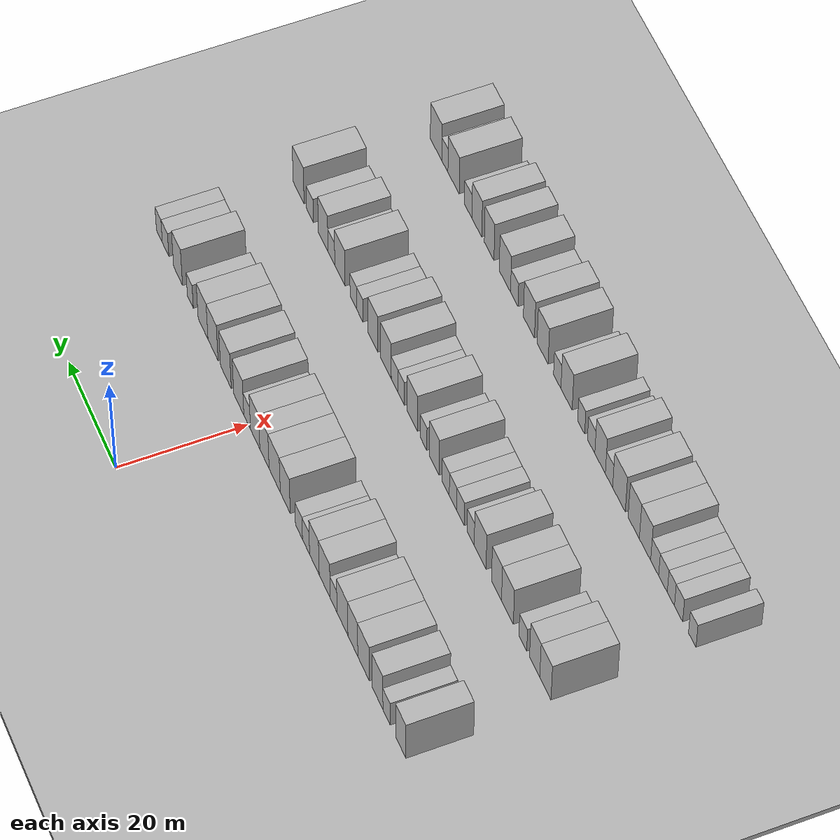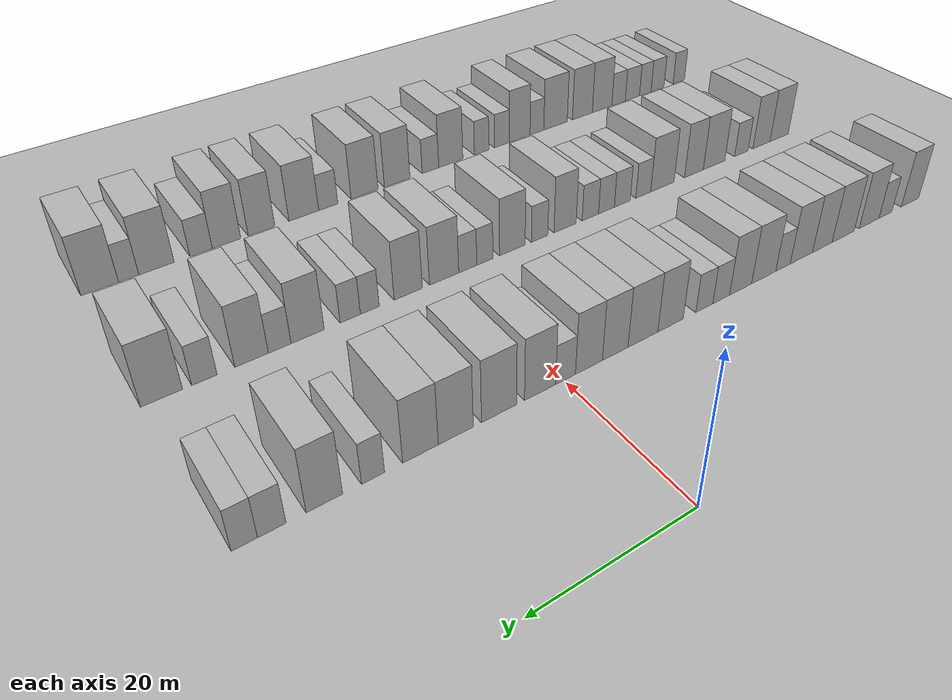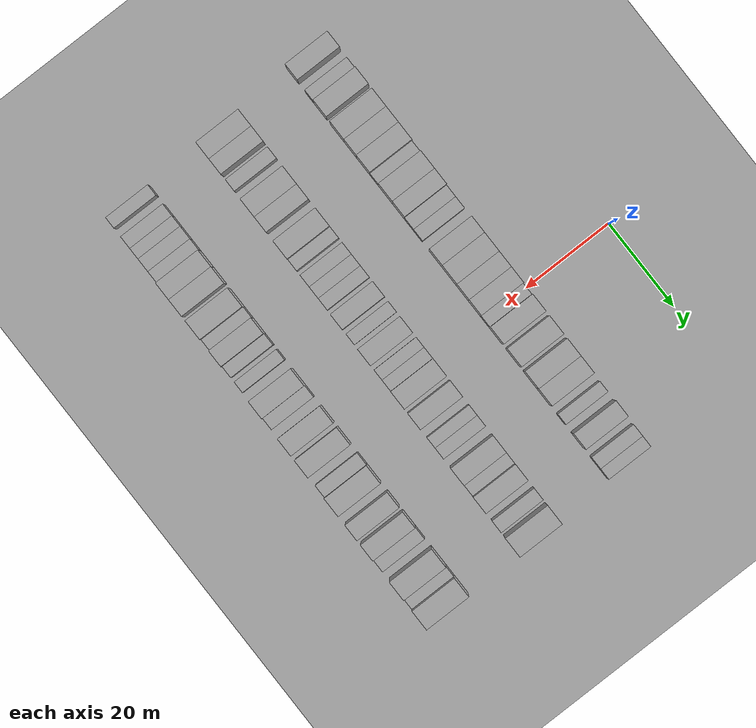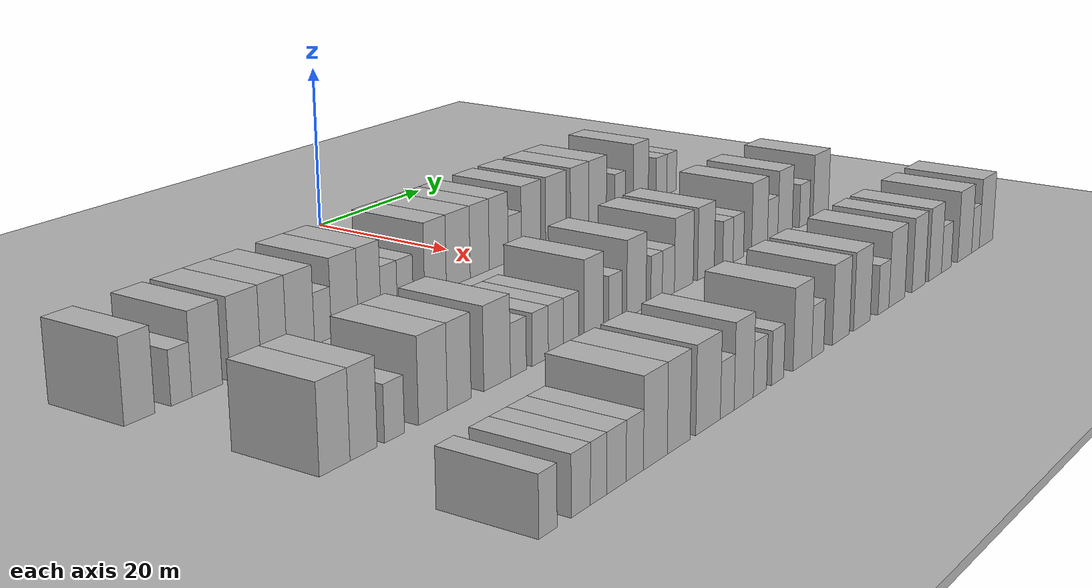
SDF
<sdf version="1.6">
 <world name="default">
  <include><name>ground_plane_1</name><uri>model://HANNAS_ground_plane</uri></include>
  <include>
   <name>ground_plane_2</name>
   <uri>model://HANNAS_ground_plane</uri>
   <pose>100 0 0  0 0 0</pose>
  </include>
  <model name="building_49">
   <static>1</static>
   <pose>25.0000 -58.6655 0 0.000000 0.000000 0.000000</pose>
   <link name="link">
    <pose>0 0 4.50 0 0 0</pose>
    <collision name="collision"><geometry><box><size>10.0000 3.7529 9.0000</size></box></geometry></collision>
    <visual name="visual">
     <cast_shadows>0</cast_shadows>
     <geometry><box><size>10.0000 3.7529 9.0000</size></box></geometry>
     <material>
      <script>
       <uri>model://HANNAS_wall/materials/scripts</uri>
       <uri>model://HANNAS_wall/materials/textures</uri>
       <name>vrc/HANNAS_wall</name>
      </script>
     </material>
    </visual>
   </link>
  </model>
  <model name="building_50">
   <static>1</static>
   <pose>25.0000 -53.4581 0 0.000000 0.000000 0.000000</pose>
   <link name="link">
    <pose>0 0 3.00 0 0 0</pose>
    <collision name="collision"><geometry><box><size>10.0000 2.6618 6.0000</size></box></geometry></collision>
    <visual name="visual">
     <cast_shadows>0</cast_shadows>
     <geometry><box><size>10.0000 2.6618 6.0000</size></box></geometry>
     <material>
      <script>
       <uri>model://HANNAS_wall/materials/scripts</uri>
       <uri>model://HANNAS_wall/materials/textures</uri>
       <name>vrc/HANNAS_wall</name>
      </script>
     </material>
    </visual>
   </link>
  </model>
  <model name="building_51">
   <static>1</static>
   <pose>25.0000 -50.1137 0 0.000000 0.000000 0.000000</pose>
   <link name="link">
    <pose>0 0 4.50 0 0 0</pose>
    <collision name="collision"><geometry><box><size>10.0000 4.0269 9.0000</size></box></geometry></collision>
    <visual name="visual">
     <cast_shadows>0</cast_shadows>
     <geometry><box><size>10.0000 4.0269 9.0000</size></box></geometry>
     <material>
      <script>
       <uri>model://HANNAS_wall/materials/scripts</uri>
       <uri>model://HANNAS_wall/materials/textures</uri>
       <name>vrc/HANNAS_wall</name>
      </script>
     </material>
    </visual>
   </link>
  </model>
  <model name="building_52">
   <static>1</static>
   <pose>25.0000 -44.9490 0 0.000000 0.000000 0.000000</pose>
   <link name="link">
    <pose>0 0 4.50 0 0 0</pose>
    <collision name="collision"><geometry><box><size>10.0000 4.3026 9.0000</size></box></geometry></collision>
    <visual name="visual">
     <cast_shadows>0</cast_shadows>
     <geometry><box><size>10.0000 4.3026 9.0000</size></box></geometry>
     <material>
      <script>
       <uri>model://HANNAS_wall/materials/scripts</uri>
       <uri>model://HANNAS_wall/materials/textures</uri>
       <name>vrc/HANNAS_wall</name>
      </script>
     </material>
    </visual>
   </link>
  </model>
  <model name="building_53">
   <static>1</static>
   <pose>25.0000 -40.9381 0 0.000000 0.000000 0.000000</pose>
   <link name="link">
    <pose>0 0 4.50 0 0 0</pose>
    <collision name="collision"><geometry><box><size>10.0000 3.7192 9.0000</size></box></geometry></collision>
    <visual name="visual">
     <cast_shadows>0</cast_shadows>
     <geometry><box><size>10.0000 3.7192 9.0000</size></box></geometry>
     <material>
      <script>
       <uri>model://HANNAS_wall/materials/scripts</uri>
       <uri>model://HANNAS_wall/materials/textures</uri>
       <name>vrc/HANNAS_wall</name>
      </script>
     </material>
    </visual>
   </link>
  </model>
  <model name="building_54">
   <static>1</static>
   <pose>25.0000 -37.0267 0 0.000000 0.000000 0.000000</pose>
   <link name="link">
    <pose>0 0 4.50 0 0 0</pose>
    <collision name="collision"><geometry><box><size>10.0000 4.1036 9.0000</size></box></geometry></collision>
    <visual name="visual">
     <cast_shadows>0</cast_shadows>
     <geometry><box><size>10.0000 4.1036 9.0000</size></box></geometry>
     <material>
      <script>
       <uri>model://HANNAS_wall/materials/scripts</uri>
       <uri>model://HANNAS_wall/materials/textures</uri>
       <name>vrc/HANNAS_wall</name>
      </script>
     </material>
    </visual>
   </link>
  </model>
  <model name="building_55">
   <static>1</static>
   <pose>25.0000 -33.6803 0 0.000000 0.000000 0.000000</pose>
   <link name="link">
    <pose>0 0 3.00 0 0 0</pose>
    <collision name="collision"><geometry><box><size>10.0000 2.5893 6.0000</size></box></geometry></collision>
    <visual name="visual">
     <cast_shadows>0</cast_shadows>
     <geometry><box><size>10.0000 2.5893 6.0000</size></box></geometry>
     <material>
      <script>
       <uri>model://HANNAS_wall/materials/scripts</uri>
       <uri>model://HANNAS_wall/materials/textures</uri>
       <name>vrc/HANNAS_wall</name>
      </script>
     </material>
    </visual>
   </link>
  </model>
  <model name="building_56">
   <static>1</static>
   <pose>25.0000 -30.2740 0 0.000000 0.000000 0.000000</pose>
   <link name="link">
    <pose>0 0 4.50 0 0 0</pose>
    <collision name="collision"><geometry><box><size>10.0000 4.2232 9.0000</size></box></geometry></collision>
    <visual name="visual">
     <cast_shadows>0</cast_shadows>
     <geometry><box><size>10.0000 4.2232 9.0000</size></box></geometry>
     <material>
      <script>
       <uri>model://HANNAS_wall/materials/scripts</uri>
       <uri>model://HANNAS_wall/materials/textures</uri>
       <name>vrc/HANNAS_wall</name>
      </script>
     </material>
    </visual>
   </link>
  </model>
  <model name="building_57">
   <static>1</static>
   <pose>25.0000 -26.3121 0 0.000000 0.000000 0.000000</pose>
   <link name="link">
    <pose>0 0 4.50 0 0 0</pose>
    <collision name="collision"><geometry><box><size>10.0000 3.7006 9.0000</size></box></geometry></collision>
    <visual name="visual">
     <cast_shadows>0</cast_shadows>
     <geometry><box><size>10.0000 3.7006 9.0000</size></box></geometry>
     <material>
      <script>
       <uri>model://HANNAS_wall/materials/scripts</uri>
       <uri>model://HANNAS_wall/materials/textures</uri>
       <name>vrc/HANNAS_wall</name>
      </script>
     </material>
    </visual>
   </link>
  </model>
  <model name="building_58">
   <static>1</static>
   <pose>25.0000 -23.0801 0 0.000000 0.000000 0.000000</pose>
   <link name="link">
    <pose>0 0 3.00 0 0 0</pose>
    <collision name="collision"><geometry><box><size>10.0000 2.7633 6.0000</size></box></geometry></collision>
    <visual name="visual">
     <cast_shadows>0</cast_shadows>
     <geometry><box><size>10.0000 2.7633 6.0000</size></box></geometry>
     <material>
      <script>
       <uri>model://HANNAS_wall/materials/scripts</uri>
       <uri>model://HANNAS_wall/materials/textures</uri>
       <name>vrc/HANNAS_wall</name>
      </script>
     </material>
    </visual>
   </link>
  </model>
  <model name="building_59">
   <static>1</static>
   <pose>25.0000 -20.3308 0 0.000000 0.000000 0.000000</pose>
   <link name="link">
    <pose>0 0 3.00 0 0 0</pose>
    <collision name="collision"><geometry><box><size>10.0000 2.7353 6.0000</size></box></geometry></collision>
    <visual name="visual">
     <cast_shadows>0</cast_shadows>
     <geometry><box><size>10.0000 2.7353 6.0000</size></box></geometry>
     <material>
      <script>
       <uri>model://HANNAS_wall/materials/scripts</uri>
       <uri>model://HANNAS_wall/materials/textures</uri>
       <name>vrc/HANNAS_wall</name>
      </script>
     </material>
    </visual>
   </link>
  </model>
  <model name="building_60">
   <static>1</static>
   <pose>25.0000 -15.0139 0 0.000000 0.000000 0.000000</pose>
   <link name="link">
    <pose>0 0 4.50 0 0 0</pose>
    <collision name="collision"><geometry><box><size>10.0000 3.8985 9.0000</size></box></geometry></collision>
    <visual name="visual">
     <cast_shadows>0</cast_shadows>
     <geometry><box><size>10.0000 3.8985 9.0000</size></box></geometry>
     <material>
      <script>
       <uri>model://HANNAS_wall/materials/scripts</uri>
       <uri>model://HANNAS_wall/materials/textures</uri>
       <name>vrc/HANNAS_wall</name>
      </script>
     </material>
    </visual>
   </link>
  </model>
  <model name="building_61">
   <static>1</static>
   <pose>25.0000 -10.8481 0 0.000000 0.000000 0.000000</pose>
   <link name="link">
    <pose>0 0 4.50 0 0 0</pose>
    <collision name="collision"><geometry><box><size>10.0000 4.4330 9.0000</size></box></geometry></collision>
    <visual name="visual">
     <cast_shadows>0</cast_shadows>
     <geometry><box><size>10.0000 4.4330 9.0000</size></box></geometry>
     <material>
      <script>
       <uri>model://HANNAS_wall/materials/scripts</uri>
       <uri>model://HANNAS_wall/materials/textures</uri>
       <name>vrc/HANNAS_wall</name>
      </script>
     </material>
    </visual>
   </link>
  </model>
  <model name="building_62">
   <static>1</static>
   <pose>25.0000 -6.7926 0 0.000000 0.000000 0.000000</pose>
   <link name="link">
    <pose>0 0 4.50 0 0 0</pose>
    <collision name="collision"><geometry><box><size>10.0000 3.6780 9.0000</size></box></geometry></collision>
    <visual name="visual">
     <cast_shadows>0</cast_shadows>
     <geometry><box><size>10.0000 3.6780 9.0000</size></box></geometry>
     <material>
      <script>
       <uri>model://HANNAS_wall/materials/scripts</uri>
       <uri>model://HANNAS_wall/materials/textures</uri>
       <name>vrc/HANNAS_wall</name>
      </script>
     </material>
    </visual>
   </link>
  </model>
  <model name="building_63">
   <static>1</static>
   <pose>25.0000 -3.0850 0 0.000000 0.000000 0.000000</pose>
   <link name="link">
    <pose>0 0 4.50 0 0 0</pose>
    <collision name="collision"><geometry><box><size>10.0000 3.7371 9.0000</size></box></geometry></collision>
    <visual name="visual">
     <cast_shadows>0</cast_shadows>
     <geometry><box><size>10.0000 3.7371 9.0000</size></box></geometry>
     <material>
      <script>
       <uri>model://HANNAS_wall/materials/scripts</uri>
       <uri>model://HANNAS_wall/materials/textures</uri>
       <name>vrc/HANNAS_wall</name>
      </script>
     </material>
    </visual>
   </link>
  </model>
  <model name="building_64">
   <static>1</static>
   <pose>25.0000 0.1219 0 0.000000 0.000000 0.000000</pose>
   <link name="link">
    <pose>0 0 3.00 0 0 0</pose>
    <collision name="collision"><geometry><box><size>10.0000 2.6768 6.0000</size></box></geometry></collision>
    <visual name="visual">
     <cast_shadows>0</cast_shadows>
     <geometry><box><size>10.0000 2.6768 6.0000</size></box></geometry>
     <material>
      <script>
       <uri>model://HANNAS_wall/materials/scripts</uri>
       <uri>model://HANNAS_wall/materials/textures</uri>
       <name>vrc/HANNAS_wall</name>
      </script>
     </material>
    </visual>
   </link>
  </model>
  <model name="building_65">
   <static>1</static>
   <pose>25.0000 3.4981 0 0.000000 0.000000 0.000000</pose>
   <link name="link">
    <pose>0 0 4.50 0 0 0</pose>
    <collision name="collision"><geometry><box><size>10.0000 4.0755 9.0000</size></box></geometry></collision>
    <visual name="visual">
     <cast_shadows>0</cast_shadows>
     <geometry><box><size>10.0000 4.0755 9.0000</size></box></geometry>
     <material>
      <script>
       <uri>model://HANNAS_wall/materials/scripts</uri>
       <uri>model://HANNAS_wall/materials/textures</uri>
       <name>vrc/HANNAS_wall</name>
      </script>
     </material>
    </visual>
   </link>
  </model>
  <model name="building_66">
   <static>1</static>
   <pose>25.0000 8.7267 0 0.000000 0.000000 0.000000</pose>
   <link name="link">
    <pose>0 0 4.50 0 0 0</pose>
    <collision name="collision"><geometry><box><size>10.0000 4.3817 9.0000</size></box></geometry></collision>
    <visual name="visual">
     <cast_shadows>0</cast_shadows>
     <geometry><box><size>10.0000 4.3817 9.0000</size></box></geometry>
     <material>
      <script>
       <uri>model://HANNAS_wall/materials/scripts</uri>
       <uri>model://HANNAS_wall/materials/textures</uri>
       <name>vrc/HANNAS_wall</name>
      </script>
     </material>
    </visual>
   </link>
  </model>
  <model name="building_67">
   <static>1</static>
   <pose>25.0000 13.9916 0 0.000000 0.000000 0.000000</pose>
   <link name="link">
    <pose>0 0 4.50 0 0 0</pose>
    <collision name="collision"><geometry><box><size>10.0000 4.1483 9.0000</size></box></geometry></collision>
    <visual name="visual">
     <cast_shadows>0</cast_shadows>
     <geometry><box><size>10.0000 4.1483 9.0000</size></box></geometry>
     <material>
      <script>
       <uri>model://HANNAS_wall/materials/scripts</uri>
       <uri>model://HANNAS_wall/materials/textures</uri>
       <name>vrc/HANNAS_wall</name>
      </script>
     </material>
    </visual>
   </link>
  </model>
  <model name="building_68">
   <static>1</static>
   <pose>25.0000 18.0978 0 0.000000 0.000000 0.000000</pose>
   <link name="link">
    <pose>0 0 4.50 0 0 0</pose>
    <collision name="collision"><geometry><box><size>10.0000 4.0641 9.0000</size></box></geometry></collision>
    <visual name="visual">
     <cast_shadows>0</cast_shadows>
     <geometry><box><size>10.0000 4.0641 9.0000</size></box></geometry>
     <material>
      <script>
       <uri>model://HANNAS_wall/materials/scripts</uri>
       <uri>model://HANNAS_wall/materials/textures</uri>
       <name>vrc/HANNAS_wall</name>
      </script>
     </material>
    </visual>
   </link>
  </model>
  <model name="building_69">
   <static>1</static>
   <pose>25.0000 23.3764 0 0.000000 0.000000 0.000000</pose>
   <link name="link">
    <pose>0 0 3.00 0 0 0</pose>
    <collision name="collision"><geometry><box><size>10.0000 2.4930 6.0000</size></box></geometry></collision>
    <visual name="visual">
     <cast_shadows>0</cast_shadows>
     <geometry><box><size>10.0000 2.4930 6.0000</size></box></geometry>
     <material>
      <script>
       <uri>model://HANNAS_wall/materials/scripts</uri>
       <uri>model://HANNAS_wall/materials/textures</uri>
       <name>vrc/HANNAS_wall</name>
      </script>
     </material>
    </visual>
   </link>
  </model>
  <model name="building_70">
   <static>1</static>
   <pose>25.0000 28.4980 0 0.000000 0.000000 0.000000</pose>
   <link name="link">
    <pose>0 0 4.50 0 0 0</pose>
    <collision name="collision"><geometry><box><size>10.0000 3.7503 9.0000</size></box></geometry></collision>
    <visual name="visual">
     <cast_shadows>0</cast_shadows>
     <geometry><box><size>10.0000 3.7503 9.0000</size></box></geometry>
     <material>
      <script>
       <uri>model://HANNAS_wall/materials/scripts</uri>
       <uri>model://HANNAS_wall/materials/textures</uri>
       <name>vrc/HANNAS_wall</name>
      </script>
     </material>
    </visual>
   </link>
  </model>
  <model name="building_71">
   <static>1</static>
   <pose>25.0000 33.7578 0 0.000000 0.000000 0.000000</pose>
   <link name="link">
    <pose>0 0 3.00 0 0 0</pose>
    <collision name="collision"><geometry><box><size>10.0000 2.7693 6.0000</size></box></geometry></collision>
    <visual name="visual">
     <cast_shadows>0</cast_shadows>
     <geometry><box><size>10.0000 2.7693 6.0000</size></box></geometry>
     <material>
      <script>
       <uri>model://HANNAS_wall/materials/scripts</uri>
       <uri>model://HANNAS_wall/materials/textures</uri>
       <name>vrc/HANNAS_wall</name>
      </script>
     </material>
    </visual>
   </link>
  </model>
  <model name="building_72">
   <static>1</static>
   <pose>25.0000 36.3964 0 0.000000 0.000000 0.000000</pose>
   <link name="link">
    <pose>0 0 3.00 0 0 0</pose>
    <collision name="collision"><geometry><box><size>10.0000 2.5077 6.0000</size></box></geometry></collision>
    <visual name="visual">
     <cast_shadows>0</cast_shadows>
     <geometry><box><size>10.0000 2.5077 6.0000</size></box></geometry>
     <material>
      <script>
       <uri>model://HANNAS_wall/materials/scripts</uri>
       <uri>model://HANNAS_wall/materials/textures</uri>
       <name>vrc/HANNAS_wall</name>
      </script>
     </material>
    </visual>
   </link>
  </model>
  <model name="building_171">
   <static>1</static>
   <pose>47.0000 -57.3354 0 0.000000 0.000000 0.000000</pose>
   <link name="link">
    <pose>0 0 4.50 0 0 0</pose>
    <collision name="collision"><geometry><box><size>10.0000 3.9554 9.0000</size></box></geometry></collision>
    <visual name="visual">
     <cast_shadows>0</cast_shadows>
     <geometry><box><size>10.0000 3.9554 9.0000</size></box></geometry>
     <material>
      <script>
       <uri>model://HANNAS_wall/materials/scripts</uri>
       <uri>model://HANNAS_wall/materials/textures</uri>
       <name>vrc/HANNAS_wall</name>
      </script>
     </material>
    </visual>
   </link>
  </model>
  <model name="building_172">
   <static>1</static>
   <pose>47.0000 -53.5448 0 0.000000 0.000000 0.000000</pose>
   <link name="link">
    <pose>0 0 4.50 0 0 0</pose>
    <collision name="collision"><geometry><box><size>10.0000 3.6259 9.0000</size></box></geometry></collision>
    <visual name="visual">
     <cast_shadows>0</cast_shadows>
     <geometry><box><size>10.0000 3.6259 9.0000</size></box></geometry>
     <material>
      <script>
       <uri>model://HANNAS_wall/materials/scripts</uri>
       <uri>model://HANNAS_wall/materials/textures</uri>
       <name>vrc/HANNAS_wall</name>
      </script>
     </material>
    </visual>
   </link>
  </model>
  <model name="building_173">
   <static>1</static>
   <pose>47.0000 -49.3407 0 0.000000 0.000000 0.000000</pose>
   <link name="link">
    <pose>0 0 3.00 0 0 0</pose>
    <collision name="collision"><geometry><box><size>10.0000 2.7821 6.0000</size></box></geometry></collision>
    <visual name="visual">
     <cast_shadows>0</cast_shadows>
     <geometry><box><size>10.0000 2.7821 6.0000</size></box></geometry>
     <material>
      <script>
       <uri>model://HANNAS_wall/materials/scripts</uri>
       <uri>model://HANNAS_wall/materials/textures</uri>
       <name>vrc/HANNAS_wall</name>
      </script>
     </material>
    </visual>
   </link>
  </model>
  <model name="building_174">
   <static>1</static>
   <pose>47.0000 -43.8166 0 0.000000 0.000000 0.000000</pose>
   <link name="link">
    <pose>0 0 4.50 0 0 0</pose>
    <collision name="collision"><geometry><box><size>10.0000 4.2661 9.0000</size></box></geometry></collision>
    <visual name="visual">
     <cast_shadows>0</cast_shadows>
     <geometry><box><size>10.0000 4.2661 9.0000</size></box></geometry>
     <material>
      <script>
       <uri>model://HANNAS_wall/materials/scripts</uri>
       <uri>model://HANNAS_wall/materials/textures</uri>
       <name>vrc/HANNAS_wall</name>
      </script>
     </material>
    </visual>
   </link>
  </model>
  <model name="building_175">
   <static>1</static>
   <pose>47.0000 -39.8684 0 0.000000 0.000000 0.000000</pose>
   <link name="link">
    <pose>0 0 4.50 0 0 0</pose>
    <collision name="collision"><geometry><box><size>10.0000 3.6304 9.0000</size></box></geometry></collision>
    <visual name="visual">
     <cast_shadows>0</cast_shadows>
     <geometry><box><size>10.0000 3.6304 9.0000</size></box></geometry>
     <material>
      <script>
       <uri>model://HANNAS_wall/materials/scripts</uri>
       <uri>model://HANNAS_wall/materials/textures</uri>
       <name>vrc/HANNAS_wall</name>
      </script>
     </material>
    </visual>
   </link>
  </model>
  <model name="building_176">
   <static>1</static>
   <pose>47.0000 -33.8919 0 0.000000 0.000000 0.000000</pose>
   <link name="link">
    <pose>0 0 4.50 0 0 0</pose>
    <collision name="collision"><geometry><box><size>10.0000 4.3226 9.0000</size></box></geometry></collision>
    <visual name="visual">
     <cast_shadows>0</cast_shadows>
     <geometry><box><size>10.0000 4.3226 9.0000</size></box></geometry>
     <material>
      <script>
       <uri>model://HANNAS_wall/materials/scripts</uri>
       <uri>model://HANNAS_wall/materials/textures</uri>
       <name>vrc/HANNAS_wall</name>
      </script>
     </material>
    </visual>
   </link>
  </model>
  <model name="building_177">
   <static>1</static>
   <pose>47.0000 -30.3866 0 0.000000 0.000000 0.000000</pose>
   <link name="link">
    <pose>0 0 3.00 0 0 0</pose>
    <collision name="collision"><geometry><box><size>10.0000 2.6880 6.0000</size></box></geometry></collision>
    <visual name="visual">
     <cast_shadows>0</cast_shadows>
     <geometry><box><size>10.0000 2.6880 6.0000</size></box></geometry>
     <material>
      <script>
       <uri>model://HANNAS_wall/materials/scripts</uri>
       <uri>model://HANNAS_wall/materials/textures</uri>
       <name>vrc/HANNAS_wall</name>
      </script>
     </material>
    </visual>
   </link>
  </model>
  <model name="building_178">
   <static>1</static>
   <pose>47.0000 -26.6368 0 0.000000 0.000000 0.000000</pose>
   <link name="link">
    <pose>0 0 3.00 0 0 0</pose>
    <collision name="collision"><geometry><box><size>10.0000 2.8116 6.0000</size></box></geometry></collision>
    <visual name="visual">
     <cast_shadows>0</cast_shadows>
     <geometry><box><size>10.0000 2.8116 6.0000</size></box></geometry>
     <material>
      <script>
       <uri>model://HANNAS_wall/materials/scripts</uri>
       <uri>model://HANNAS_wall/materials/textures</uri>
       <name>vrc/HANNAS_wall</name>
      </script>
     </material>
    </visual>
   </link>
  </model>
  <model name="building_179">
   <static>1</static>
   <pose>47.0000 -23.8661 0 0.000000 0.000000 0.000000</pose>
   <link name="link">
    <pose>0 0 3.00 0 0 0</pose>
    <collision name="collision"><geometry><box><size>10.0000 2.7296 6.0000</size></box></geometry></collision>
    <visual name="visual">
     <cast_shadows>0</cast_shadows>
     <geometry><box><size>10.0000 2.7296 6.0000</size></box></geometry>
     <material>
      <script>
       <uri>model://HANNAS_wall/materials/scripts</uri>
       <uri>model://HANNAS_wall/materials/textures</uri>
       <name>vrc/HANNAS_wall</name>
      </script>
     </material>
    </visual>
   </link>
  </model>
  <model name="building_180">
   <static>1</static>
   <pose>47.0000 -21.1124 0 0.000000 0.000000 0.000000</pose>
   <link name="link">
    <pose>0 0 3.00 0 0 0</pose>
    <collision name="collision"><geometry><box><size>10.0000 2.7777 6.0000</size></box></geometry></collision>
    <visual name="visual">
     <cast_shadows>0</cast_shadows>
     <geometry><box><size>10.0000 2.7777 6.0000</size></box></geometry>
     <material>
      <script>
       <uri>model://HANNAS_wall/materials/scripts</uri>
       <uri>model://HANNAS_wall/materials/textures</uri>
       <name>vrc/HANNAS_wall</name>
      </script>
     </material>
    </visual>
   </link>
  </model>
  <model name="building_181">
   <static>1</static>
   <pose>47.0000 -16.8980 0 0.000000 0.000000 0.000000</pose>
   <link name="link">
    <pose>0 0 4.50 0 0 0</pose>
    <collision name="collision"><geometry><box><size>10.0000 3.6511 9.0000</size></box></geometry></collision>
    <visual name="visual">
     <cast_shadows>0</cast_shadows>
     <geometry><box><size>10.0000 3.6511 9.0000</size></box></geometry>
     <material>
      <script>
       <uri>model://HANNAS_wall/materials/scripts</uri>
       <uri>model://HANNAS_wall/materials/textures</uri>
       <name>vrc/HANNAS_wall</name>
      </script>
     </material>
    </visual>
   </link>
  </model>
  <model name="building_182">
   <static>1</static>
   <pose>47.0000 -12.7740 0 0.000000 0.000000 0.000000</pose>
   <link name="link">
    <pose>0 0 3.00 0 0 0</pose>
    <collision name="collision"><geometry><box><size>10.0000 2.5969 6.0000</size></box></geometry></collision>
    <visual name="visual">
     <cast_shadows>0</cast_shadows>
     <geometry><box><size>10.0000 2.5969 6.0000</size></box></geometry>
     <material>
      <script>
       <uri>model://HANNAS_wall/materials/scripts</uri>
       <uri>model://HANNAS_wall/materials/textures</uri>
       <name>vrc/HANNAS_wall</name>
      </script>
     </material>
    </visual>
   </link>
  </model>
  <model name="building_183">
   <static>1</static>
   <pose>47.0000 -8.5013 0 0.000000 0.000000 0.000000</pose>
   <link name="link">
    <pose>0 0 4.50 0 0 0</pose>
    <collision name="collision"><geometry><box><size>10.0000 3.9486 9.0000</size></box></geometry></collision>
    <visual name="visual">
     <cast_shadows>0</cast_shadows>
     <geometry><box><size>10.0000 3.9486 9.0000</size></box></geometry>
     <material>
      <script>
       <uri>model://HANNAS_wall/materials/scripts</uri>
       <uri>model://HANNAS_wall/materials/textures</uri>
       <name>vrc/HANNAS_wall</name>
      </script>
     </material>
    </visual>
   </link>
  </model>
  <model name="building_184">
   <static>1</static>
   <pose>47.0000 -4.3230 0 0.000000 0.000000 0.000000</pose>
   <link name="link">
    <pose>0 0 3.00 0 0 0</pose>
    <collision name="collision"><geometry><box><size>10.0000 2.4080 6.0000</size></box></geometry></collision>
    <visual name="visual">
     <cast_shadows>0</cast_shadows>
     <geometry><box><size>10.0000 2.4080 6.0000</size></box></geometry>
     <material>
      <script>
       <uri>model://HANNAS_wall/materials/scripts</uri>
       <uri>model://HANNAS_wall/materials/textures</uri>
       <name>vrc/HANNAS_wall</name>
      </script>
     </material>
    </visual>
   </link>
  </model>
  <model name="building_185">
   <static>1</static>
   <pose>47.0000 -1.8005 0 0.000000 0.000000 0.000000</pose>
   <link name="link">
    <pose>0 0 3.00 0 0 0</pose>
    <collision name="collision"><geometry><box><size>10.0000 2.6370 6.0000</size></box></geometry></collision>
    <visual name="visual">
     <cast_shadows>0</cast_shadows>
     <geometry><box><size>10.0000 2.6370 6.0000</size></box></geometry>
     <material>
      <script>
       <uri>model://HANNAS_wall/materials/scripts</uri>
       <uri>model://HANNAS_wall/materials/textures</uri>
       <name>vrc/HANNAS_wall</name>
      </script>
     </material>
    </visual>
   </link>
  </model>
  <model name="building_186">
   <static>1</static>
   <pose>47.0000 1.6050 0 0.000000 0.000000 0.000000</pose>
   <link name="link">
    <pose>0 0 4.50 0 0 0</pose>
    <collision name="collision"><geometry><box><size>10.0000 4.1739 9.0000</size></box></geometry></collision>
    <visual name="visual">
     <cast_shadows>0</cast_shadows>
     <geometry><box><size>10.0000 4.1739 9.0000</size></box></geometry>
     <material>
      <script>
       <uri>model://HANNAS_wall/materials/scripts</uri>
       <uri>model://HANNAS_wall/materials/textures</uri>
       <name>vrc/HANNAS_wall</name>
      </script>
     </material>
    </visual>
   </link>
  </model>
  <model name="building_187">
   <static>1</static>
   <pose>47.0000 6.6190 0 0.000000 0.000000 0.000000</pose>
   <link name="link">
    <pose>0 0 4.50 0 0 0</pose>
    <collision name="collision"><geometry><box><size>10.0000 3.8542 9.0000</size></box></geometry></collision>
    <visual name="visual">
     <cast_shadows>0</cast_shadows>
     <geometry><box><size>10.0000 3.8542 9.0000</size></box></geometry>
     <material>
      <script>
       <uri>model://HANNAS_wall/materials/scripts</uri>
       <uri>model://HANNAS_wall/materials/textures</uri>
       <name>vrc/HANNAS_wall</name>
      </script>
     </material>
    </visual>
   </link>
  </model>
  <model name="building_188">
   <static>1</static>
   <pose>47.0000 11.7784 0 0.000000 0.000000 0.000000</pose>
   <link name="link">
    <pose>0 0 3.00 0 0 0</pose>
    <collision name="collision"><geometry><box><size>10.0000 2.4646 6.0000</size></box></geometry></collision>
    <visual name="visual">
     <cast_shadows>0</cast_shadows>
     <geometry><box><size>10.0000 2.4646 6.0000</size></box></geometry>
     <material>
      <script>
       <uri>model://HANNAS_wall/materials/scripts</uri>
       <uri>model://HANNAS_wall/materials/textures</uri>
       <name>vrc/HANNAS_wall</name>
      </script>
     </material>
    </visual>
   </link>
  </model>
  <model name="building_189">
   <static>1</static>
   <pose>47.0000 14.3193 0 0.000000 0.000000 0.000000</pose>
   <link name="link">
    <pose>0 0 3.00 0 0 0</pose>
    <collision name="collision"><geometry><box><size>10.0000 2.6172 6.0000</size></box></geometry></collision>
    <visual name="visual">
     <cast_shadows>0</cast_shadows>
     <geometry><box><size>10.0000 2.6172 6.0000</size></box></geometry>
     <material>
      <script>
       <uri>model://HANNAS_wall/materials/scripts</uri>
       <uri>model://HANNAS_wall/materials/textures</uri>
       <name>vrc/HANNAS_wall</name>
      </script>
     </material>
    </visual>
   </link>
  </model>
  <model name="building_190">
   <static>1</static>
   <pose>47.0000 19.6649 0 0.000000 0.000000 0.000000</pose>
   <link name="link">
    <pose>0 0 4.50 0 0 0</pose>
    <collision name="collision"><geometry><box><size>10.0000 4.0740 9.0000</size></box></geometry></collision>
    <visual name="visual">
     <cast_shadows>0</cast_shadows>
     <geometry><box><size>10.0000 4.0740 9.0000</size></box></geometry>
     <material>
      <script>
       <uri>model://HANNAS_wall/materials/scripts</uri>
       <uri>model://HANNAS_wall/materials/textures</uri>
       <name>vrc/HANNAS_wall</name>
      </script>
     </material>
    </visual>
   </link>
  </model>
  <model name="building_191">
   <static>1</static>
   <pose>47.0000 23.0623 0 0.000000 0.000000 0.000000</pose>
   <link name="link">
    <pose>0 0 3.00 0 0 0</pose>
    <collision name="collision"><geometry><box><size>10.0000 2.7208 6.0000</size></box></geometry></collision>
    <visual name="visual">
     <cast_shadows>0</cast_shadows>
     <geometry><box><size>10.0000 2.7208 6.0000</size></box></geometry>
     <material>
      <script>
       <uri>model://HANNAS_wall/materials/scripts</uri>
       <uri>model://HANNAS_wall/materials/textures</uri>
       <name>vrc/HANNAS_wall</name>
      </script>
     </material>
    </visual>
   </link>
  </model>
  <model name="building_192">
   <static>1</static>
   <pose>47.0000 26.3677 0 0.000000 0.000000 0.000000</pose>
   <link name="link">
    <pose>0 0 4.50 0 0 0</pose>
    <collision name="collision"><geometry><box><size>10.0000 3.8901 9.0000</size></box></geometry></collision>
    <visual name="visual">
     <cast_shadows>0</cast_shadows>
     <geometry><box><size>10.0000 3.8901 9.0000</size></box></geometry>
     <material>
      <script>
       <uri>model://HANNAS_wall/materials/scripts</uri>
       <uri>model://HANNAS_wall/materials/textures</uri>
       <name>vrc/HANNAS_wall</name>
      </script>
     </material>
    </visual>
   </link>
  </model>
  <model name="building_193">
   <static>1</static>
   <pose>47.0000 31.7165 0 0.000000 0.000000 0.000000</pose>
   <link name="link">
    <pose>0 0 3.00 0 0 0</pose>
    <collision name="collision"><geometry><box><size>10.0000 2.8074 6.0000</size></box></geometry></collision>
    <visual name="visual">
     <cast_shadows>0</cast_shadows>
     <geometry><box><size>10.0000 2.8074 6.0000</size></box></geometry>
     <material>
      <script>
       <uri>model://HANNAS_wall/materials/scripts</uri>
       <uri>model://HANNAS_wall/materials/textures</uri>
       <name>vrc/HANNAS_wall</name>
      </script>
     </material>
    </visual>
   </link>
  </model>
  <model name="building_194">
   <static>1</static>
   <pose>47.0000 36.3545 0 0.000000 0.000000 0.000000</pose>
   <link name="link">
    <pose>0 0 4.50 0 0 0</pose>
    <collision name="collision"><geometry><box><size>10.0000 4.4687 9.0000</size></box></geometry></collision>
    <visual name="visual">
     <cast_shadows>0</cast_shadows>
     <geometry><box><size>10.0000 4.4687 9.0000</size></box></geometry>
     <material>
      <script>
       <uri>model://HANNAS_wall/materials/scripts</uri>
       <uri>model://HANNAS_wall/materials/textures</uri>
       <name>vrc/HANNAS_wall</name>
      </script>
     </material>
    </visual>
   </link>
  </model>
  <model name="building_285">
   <static>1</static>
   <pose>69.0000 -57.6317 0 0.000000 0.000000 0.000000</pose>
   <link name="link">
    <pose>0 0 3.00 0 0 0</pose>
    <collision name="collision"><geometry><box><size>10.0000 2.5446 6.0000</size></box></geometry></collision>
    <visual name="visual">
     <cast_shadows>0</cast_shadows>
     <geometry><box><size>10.0000 2.5446 6.0000</size></box></geometry>
     <material>
      <script>
       <uri>model://HANNAS_wall/materials/scripts</uri>
       <uri>model://HANNAS_wall/materials/textures</uri>
       <name>vrc/HANNAS_wall</name>
      </script>
     </material>
    </visual>
   </link>
  </model>
  <model name="building_286">
   <static>1</static>
   <pose>69.0000 -52.9552 0 0.000000 0.000000 0.000000</pose>
   <link name="link">
    <pose>0 0 3.00 0 0 0</pose>
    <collision name="collision"><geometry><box><size>10.0000 2.8083 6.0000</size></box></geometry></collision>
    <visual name="visual">
     <cast_shadows>0</cast_shadows>
     <geometry><box><size>10.0000 2.8083 6.0000</size></box></geometry>
     <material>
      <script>
       <uri>model://HANNAS_wall/materials/scripts</uri>
       <uri>model://HANNAS_wall/materials/textures</uri>
       <name>vrc/HANNAS_wall</name>
      </script>
     </material>
    </visual>
   </link>
  </model>
  <model name="building_287">
   <static>1</static>
   <pose>69.0000 -50.3114 0 0.000000 0.000000 0.000000</pose>
   <link name="link">
    <pose>0 0 3.00 0 0 0</pose>
    <collision name="collision"><geometry><box><size>10.0000 2.4793 6.0000</size></box></geometry></collision>
    <visual name="visual">
     <cast_shadows>0</cast_shadows>
     <geometry><box><size>10.0000 2.4793 6.0000</size></box></geometry>
     <material>
      <script>
       <uri>model://HANNAS_wall/materials/scripts</uri>
       <uri>model://HANNAS_wall/materials/textures</uri>
       <name>vrc/HANNAS_wall</name>
      </script>
     </material>
    </visual>
   </link>
  </model>
  <model name="building_288">
   <static>1</static>
   <pose>69.0000 -47.5759 0 0.000000 0.000000 0.000000</pose>
   <link name="link">
    <pose>0 0 3.00 0 0 0</pose>
    <collision name="collision"><geometry><box><size>10.0000 2.9916 6.0000</size></box></geometry></collision>
    <visual name="visual">
     <cast_shadows>0</cast_shadows>
     <geometry><box><size>10.0000 2.9916 6.0000</size></box></geometry>
     <material>
      <script>
       <uri>model://HANNAS_wall/materials/scripts</uri>
       <uri>model://HANNAS_wall/materials/textures</uri>
       <name>vrc/HANNAS_wall</name>
      </script>
     </material>
    </visual>
   </link>
  </model>
  <model name="building_289">
   <static>1</static>
   <pose>69.0000 -44.6954 0 0.000000 0.000000 0.000000</pose>
   <link name="link">
    <pose>0 0 3.00 0 0 0</pose>
    <collision name="collision"><geometry><box><size>10.0000 2.7696 6.0000</size></box></geometry></collision>
    <visual name="visual">
     <cast_shadows>0</cast_shadows>
     <geometry><box><size>10.0000 2.7696 6.0000</size></box></geometry>
     <material>
      <script>
       <uri>model://HANNAS_wall/materials/scripts</uri>
       <uri>model://HANNAS_wall/materials/textures</uri>
       <name>vrc/HANNAS_wall</name>
      </script>
     </material>
    </visual>
   </link>
  </model>
  <model name="building_290">
   <static>1</static>
   <pose>69.0000 -41.3316 0 0.000000 0.000000 0.000000</pose>
   <link name="link">
    <pose>0 0 4.50 0 0 0</pose>
    <collision name="collision"><geometry><box><size>10.0000 3.9579 9.0000</size></box></geometry></collision>
    <visual name="visual">
     <cast_shadows>0</cast_shadows>
     <geometry><box><size>10.0000 3.9579 9.0000</size></box></geometry>
     <material>
      <script>
       <uri>model://HANNAS_wall/materials/scripts</uri>
       <uri>model://HANNAS_wall/materials/textures</uri>
       <name>vrc/HANNAS_wall</name>
      </script>
     </material>
    </visual>
   </link>
  </model>
  <model name="building_291">
   <static>1</static>
   <pose>69.0000 -37.3723 0 0.000000 0.000000 0.000000</pose>
   <link name="link">
    <pose>0 0 4.50 0 0 0</pose>
    <collision name="collision"><geometry><box><size>10.0000 3.9608 9.0000</size></box></geometry></collision>
    <visual name="visual">
     <cast_shadows>0</cast_shadows>
     <geometry><box><size>10.0000 3.9608 9.0000</size></box></geometry>
     <material>
      <script>
       <uri>model://HANNAS_wall/materials/scripts</uri>
       <uri>model://HANNAS_wall/materials/textures</uri>
       <name>vrc/HANNAS_wall</name>
      </script>
     </material>
    </visual>
   </link>
  </model>
  <model name="building_292">
   <static>1</static>
   <pose>69.0000 -32.1456 0 0.000000 0.000000 0.000000</pose>
   <link name="link">
    <pose>0 0 4.50 0 0 0</pose>
    <collision name="collision"><geometry><box><size>10.0000 4.4927 9.0000</size></box></geometry></collision>
    <visual name="visual">
     <cast_shadows>0</cast_shadows>
     <geometry><box><size>10.0000 4.4927 9.0000</size></box></geometry>
     <material>
      <script>
       <uri>model://HANNAS_wall/materials/scripts</uri>
       <uri>model://HANNAS_wall/materials/textures</uri>
       <name>vrc/HANNAS_wall</name>
      </script>
     </material>
    </visual>
   </link>
  </model>
  <model name="building_293">
   <static>1</static>
   <pose>69.0000 -28.6047 0 0.000000 0.000000 0.000000</pose>
   <link name="link">
    <pose>0 0 3.00 0 0 0</pose>
    <collision name="collision"><geometry><box><size>10.0000 2.5891 6.0000</size></box></geometry></collision>
    <visual name="visual">
     <cast_shadows>0</cast_shadows>
     <geometry><box><size>10.0000 2.5891 6.0000</size></box></geometry>
     <material>
      <script>
       <uri>model://HANNAS_wall/materials/scripts</uri>
       <uri>model://HANNAS_wall/materials/textures</uri>
       <name>vrc/HANNAS_wall</name>
      </script>
     </material>
    </visual>
   </link>
  </model>
  <model name="building_294">
   <static>1</static>
   <pose>69.0000 -25.4230 0 0.000000 0.000000 0.000000</pose>
   <link name="link">
    <pose>0 0 4.50 0 0 0</pose>
    <collision name="collision"><geometry><box><size>10.0000 3.7742 9.0000</size></box></geometry></collision>
    <visual name="visual">
     <cast_shadows>0</cast_shadows>
     <geometry><box><size>10.0000 3.7742 9.0000</size></box></geometry>
     <material>
      <script>
       <uri>model://HANNAS_wall/materials/scripts</uri>
       <uri>model://HANNAS_wall/materials/textures</uri>
       <name>vrc/HANNAS_wall</name>
      </script>
     </material>
    </visual>
   </link>
  </model>
  <model name="building_295">
   <static>1</static>
   <pose>69.0000 -22.2009 0 0.000000 0.000000 0.000000</pose>
   <link name="link">
    <pose>0 0 3.00 0 0 0</pose>
    <collision name="collision"><geometry><box><size>10.0000 2.6699 6.0000</size></box></geometry></collision>
    <visual name="visual">
     <cast_shadows>0</cast_shadows>
     <geometry><box><size>10.0000 2.6699 6.0000</size></box></geometry>
     <material>
      <script>
       <uri>model://HANNAS_wall/materials/scripts</uri>
       <uri>model://HANNAS_wall/materials/textures</uri>
       <name>vrc/HANNAS_wall</name>
      </script>
     </material>
    </visual>
   </link>
  </model>
  <model name="building_296">
   <static>1</static>
   <pose>69.0000 -18.5926 0 0.000000 0.000000 0.000000</pose>
   <link name="link">
    <pose>0 0 3.00 0 0 0</pose>
    <collision name="collision"><geometry><box><size>10.0000 2.5468 6.0000</size></box></geometry></collision>
    <visual name="visual">
     <cast_shadows>0</cast_shadows>
     <geometry><box><size>10.0000 2.5468 6.0000</size></box></geometry>
     <material>
      <script>
       <uri>model://HANNAS_wall/materials/scripts</uri>
       <uri>model://HANNAS_wall/materials/textures</uri>
       <name>vrc/HANNAS_wall</name>
      </script>
     </material>
    </visual>
   </link>
  </model>
  <model name="building_297">
   <static>1</static>
   <pose>69.0000 -13.2726 0 0.000000 0.000000 0.000000</pose>
   <link name="link">
    <pose>0 0 4.50 0 0 0</pose>
    <collision name="collision"><geometry><box><size>10.0000 4.0933 9.0000</size></box></geometry></collision>
    <visual name="visual">
     <cast_shadows>0</cast_shadows>
     <geometry><box><size>10.0000 4.0933 9.0000</size></box></geometry>
     <material>
      <script>
       <uri>model://HANNAS_wall/materials/scripts</uri>
       <uri>model://HANNAS_wall/materials/textures</uri>
       <name>vrc/HANNAS_wall</name>
      </script>
     </material>
    </visual>
   </link>
  </model>
  <model name="building_298">
   <static>1</static>
   <pose>69.0000 -9.8646 0 0.000000 0.000000 0.000000</pose>
   <link name="link">
    <pose>0 0 3.00 0 0 0</pose>
    <collision name="collision"><geometry><box><size>10.0000 2.7227 6.0000</size></box></geometry></collision>
    <visual name="visual">
     <cast_shadows>0</cast_shadows>
     <geometry><box><size>10.0000 2.7227 6.0000</size></box></geometry>
     <material>
      <script>
       <uri>model://HANNAS_wall/materials/scripts</uri>
       <uri>model://HANNAS_wall/materials/textures</uri>
       <name>vrc/HANNAS_wall</name>
      </script>
     </material>
    </visual>
   </link>
  </model>
  <model name="building_299">
   <static>1</static>
   <pose>69.0000 -4.4647 0 0.000000 0.000000 0.000000</pose>
   <link name="link">
    <pose>0 0 4.50 0 0 0</pose>
    <collision name="collision"><geometry><box><size>10.0000 4.0771 9.0000</size></box></geometry></collision>
    <visual name="visual">
     <cast_shadows>0</cast_shadows>
     <geometry><box><size>10.0000 4.0771 9.0000</size></box></geometry>
     <material>
      <script>
       <uri>model://HANNAS_wall/materials/scripts</uri>
       <uri>model://HANNAS_wall/materials/textures</uri>
       <name>vrc/HANNAS_wall</name>
      </script>
     </material>
    </visual>
   </link>
  </model>
  <model name="building_300">
   <static>1</static>
   <pose>69.0000 0.6458 0 0.000000 0.000000 0.000000</pose>
   <link name="link">
    <pose>0 0 4.50 0 0 0</pose>
    <collision name="collision"><geometry><box><size>10.0000 4.1437 9.0000</size></box></geometry></collision>
    <visual name="visual">
     <cast_shadows>0</cast_shadows>
     <geometry><box><size>10.0000 4.1437 9.0000</size></box></geometry>
     <material>
      <script>
       <uri>model://HANNAS_wall/materials/scripts</uri>
       <uri>model://HANNAS_wall/materials/textures</uri>
       <name>vrc/HANNAS_wall</name>
      </script>
     </material>
    </visual>
   </link>
  </model>
  <model name="building_301">
   <static>1</static>
   <pose>69.0000 6.1363 0 0.000000 0.000000 0.000000</pose>
   <link name="link">
    <pose>0 0 3.00 0 0 0</pose>
    <collision name="collision"><geometry><box><size>10.0000 2.8373 6.0000</size></box></geometry></collision>
    <visual name="visual">
     <cast_shadows>0</cast_shadows>
     <geometry><box><size>10.0000 2.8373 6.0000</size></box></geometry>
     <material>
      <script>
       <uri>model://HANNAS_wall/materials/scripts</uri>
       <uri>model://HANNAS_wall/materials/textures</uri>
       <name>vrc/HANNAS_wall</name>
      </script>
     </material>
    </visual>
   </link>
  </model>
  <model name="building_302">
   <static>1</static>
   <pose>69.0000 9.7001 0 0.000000 0.000000 0.000000</pose>
   <link name="link">
    <pose>0 0 4.50 0 0 0</pose>
    <collision name="collision"><geometry><box><size>10.0000 4.2902 9.0000</size></box></geometry></collision>
    <visual name="visual">
     <cast_shadows>0</cast_shadows>
     <geometry><box><size>10.0000 4.2902 9.0000</size></box></geometry>
     <material>
      <script>
       <uri>model://HANNAS_wall/materials/scripts</uri>
       <uri>model://HANNAS_wall/materials/textures</uri>
       <name>vrc/HANNAS_wall</name>
      </script>
     </material>
    </visual>
   </link>
  </model>
  <model name="building_303">
   <static>1</static>
   <pose>69.0000 15.6857 0 0.000000 0.000000 0.000000</pose>
   <link name="link">
    <pose>0 0 4.50 0 0 0</pose>
    <collision name="collision"><geometry><box><size>10.0000 3.6812 9.0000</size></box></geometry></collision>
    <visual name="visual">
     <cast_shadows>0</cast_shadows>
     <geometry><box><size>10.0000 3.6812 9.0000</size></box></geometry>
     <material>
      <script>
       <uri>model://HANNAS_wall/materials/scripts</uri>
       <uri>model://HANNAS_wall/materials/textures</uri>
       <name>vrc/HANNAS_wall</name>
      </script>
     </material>
    </visual>
   </link>
  </model>
  <model name="building_304">
   <static>1</static>
   <pose>69.0000 20.4210 0 0.000000 0.000000 0.000000</pose>
   <link name="link">
    <pose>0 0 4.50 0 0 0</pose>
    <collision name="collision"><geometry><box><size>10.0000 3.7894 9.0000</size></box></geometry></collision>
    <visual name="visual">
     <cast_shadows>0</cast_shadows>
     <geometry><box><size>10.0000 3.7894 9.0000</size></box></geometry>
     <material>
      <script>
       <uri>model://HANNAS_wall/materials/scripts</uri>
       <uri>model://HANNAS_wall/materials/textures</uri>
       <name>vrc/HANNAS_wall</name>
      </script>
     </material>
    </visual>
   </link>
  </model>
  <model name="building_305">
   <static>1</static>
   <pose>69.0000 23.7774 0 0.000000 0.000000 0.000000</pose>
   <link name="link">
    <pose>0 0 3.00 0 0 0</pose>
    <collision name="collision"><geometry><box><size>10.0000 2.9235 6.0000</size></box></geometry></collision>
    <visual name="visual">
     <cast_shadows>0</cast_shadows>
     <geometry><box><size>10.0000 2.9235 6.0000</size></box></geometry>
     <material>
      <script>
       <uri>model://HANNAS_wall/materials/scripts</uri>
       <uri>model://HANNAS_wall/materials/textures</uri>
       <name>vrc/HANNAS_wall</name>
      </script>
     </material>
    </visual>
   </link>
  </model>
  <model name="building_306">
   <static>1</static>
   <pose>69.0000 29.4371 0 0.000000 0.000000 0.000000</pose>
   <link name="link">
    <pose>0 0 4.50 0 0 0</pose>
    <collision name="collision"><geometry><box><size>10.0000 4.3959 9.0000</size></box></geometry></collision>
    <visual name="visual">
     <cast_shadows>0</cast_shadows>
     <geometry><box><size>10.0000 4.3959 9.0000</size></box></geometry>
     <material>
      <script>
       <uri>model://HANNAS_wall/materials/scripts</uri>
       <uri>model://HANNAS_wall/materials/textures</uri>
       <name>vrc/HANNAS_wall</name>
      </script>
     </material>
    </visual>
   </link>
  </model>
  <model name="building_307">
   <static>1</static>
   <pose>69.0000 32.8632 0 0.000000 0.000000 0.000000</pose>
   <link name="link">
    <pose>0 0 3.00 0 0 0</pose>
    <collision name="collision"><geometry><box><size>10.0000 2.4561 6.0000</size></box></geometry></collision>
    <visual name="visual">
     <cast_shadows>0</cast_shadows>
     <geometry><box><size>10.0000 2.4561 6.0000</size></box></geometry>
     <material>
      <script>
       <uri>model://HANNAS_wall/materials/scripts</uri>
       <uri>model://HANNAS_wall/materials/textures</uri>
       <name>vrc/HANNAS_wall</name>
      </script>
     </material>
    </visual>
   </link>
  </model>
  <model name="building_308">
   <static>1</static>
   <pose>69.0000 36.3246 0 0.000000 0.000000 0.000000</pose>
   <link name="link">
    <pose>0 0 4.50 0 0 0</pose>
    <collision name="collision"><geometry><box><size>10.0000 4.4668 9.0000</size></box></geometry></collision>
    <visual name="visual">
     <cast_shadows>0</cast_shadows>
     <geometry><box><size>10.0000 4.4668 9.0000</size></box></geometry>
     <material>
      <script>
       <uri>model://HANNAS_wall/materials/scripts</uri>
       <uri>model://HANNAS_wall/materials/textures</uri>
       <name>vrc/HANNAS_wall</name>
      </script>
     </material>
    </visual>
   </link>
  </model>
 </world>
</sdf>
